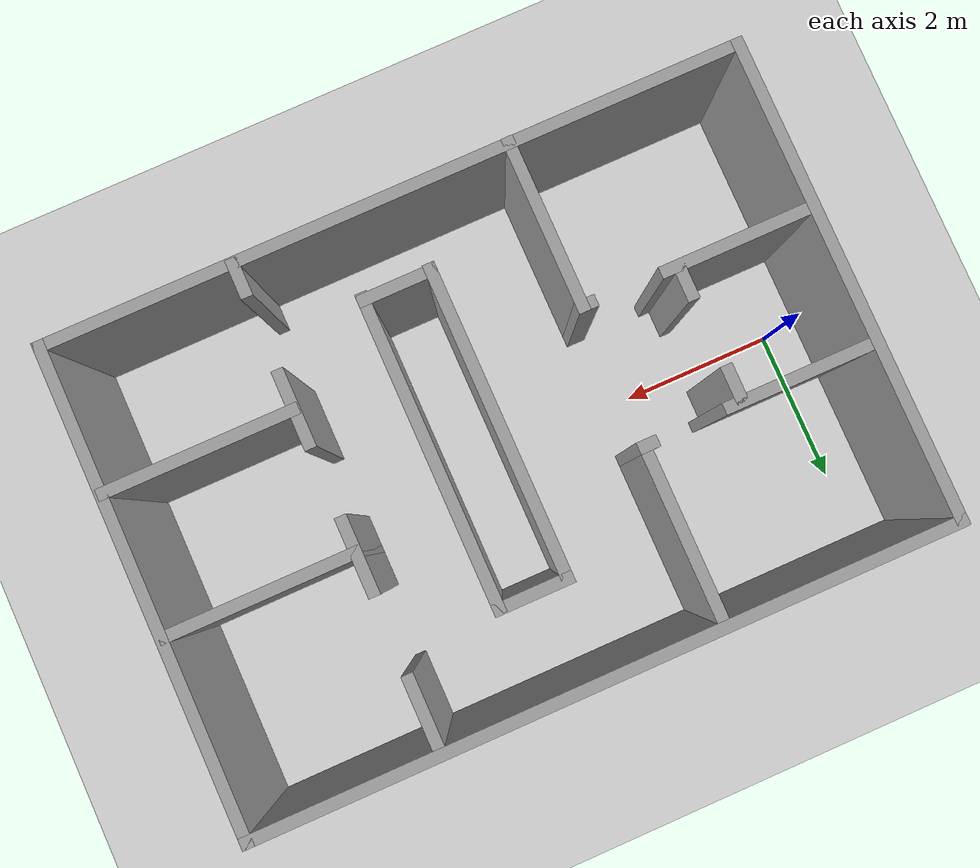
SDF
<sdf version="1.7">
 <world name="default">
  <light name="sun" type="directional">
   <pose>0 0 10 0 -0 0</pose>
   <diffuse>0.8 0.8 0.8 1</diffuse>
   <specular>0.2 0.2 0.2 1</specular>
   <attenuation>
    <range>1000</range>
    <constant>0.9</constant>
    <linear>0.01</linear>
    <quadratic>0.001</quadratic>
   </attenuation>
   <direction>-0.5 0.1 -0.9</direction>
   <spot><inner_angle>0</inner_angle><outer_angle>0</outer_angle><falloff>0</falloff></spot>
  </light>
  <model name="ground_plane">
   <static>1</static>
   <link name="link">
    <collision name="collision">
     <geometry><plane><normal>0 0 1</normal><size>100 100</size></plane></geometry>
     <surface>
      <contact><collide_bitmask>65535</collide_bitmask></contact>
      <friction><ode><mu>100</mu><mu2>50</mu2></ode></friction>
     </surface>
    </collision>
    <visual name="visual">
     <cast_shadows>0</cast_shadows>
     <geometry><plane><normal>0 0 1</normal><size>100 100</size></plane></geometry>
     <material>
      <script><uri>file://media/materials/scripts/gazebo.material</uri><name>Gazebo/Grey</name></script>
     </material>
    </visual>
   </link>
  </model>
  <gravity>0 0 -9.8</gravity>
  <magnetic_field>6e-06 2.3e-05 -4.2e-05</magnetic_field>
  <atmosphere type="adiabatic"/>
  <physics type="ode">
   <max_step_size>0.003</max_step_size>
   <real_time_factor>1</real_time_factor>
   <real_time_update_rate>1000</real_time_update_rate>
  </physics>
  <scene><ambient>0.4 0.4 0.4 1</ambient><background>0.7 0.7 0.7 1</background><shadows>1</shadows></scene>
  <spherical_coordinates>
   <surface_model>EARTH_WGS84</surface_model>
   <latitude_deg>0</latitude_deg>
   <longitude_deg>0</longitude_deg>
   <elevation>0</elevation>
   <heading_deg>0</heading_deg>
  </spherical_coordinates>
  <model name="Untitledñlkñlklñ">
   <pose>3.88389 -0.104499 0 0 -0 0</pose>
   <link name="Wall_0">
    <collision name="Wall_0_Collision">
     <geometry><box><size>9 0.15 2.5</size></box></geometry>
     <pose>0 0 1.25 0 -0 0</pose>
    </collision>
    <visual name="Wall_0_Visual">
     <pose>0 0 1.25 0 -0 0</pose>
     <geometry><box><size>9 0.15 2.5</size></box></geometry>
     <material>
      <script><uri>file://media/materials/scripts/gazebo.material</uri><name>Gazebo/Grey</name></script>
      <ambient>1 1 1 1</ambient>
     </material>
     <meta><layer>0</layer></meta>
    </visual>
    <pose>0 3.05202 0 0 -0 0</pose>
   </link>
   <link name="Wall_1">
    <collision name="Wall_1_Collision">
     <geometry><box><size>6.25 0.15 2.5</size></box></geometry>
     <pose>0 0 1.25 0 -0 0</pose>
    </collision>
    <visual name="Wall_1_Visual">
     <pose>0 0 1.25 0 -0 0</pose>
     <geometry><box><size>6.25 0.15 2.5</size></box></geometry>
     <material>
      <script><uri>file://media/materials/scripts/gazebo.material</uri><name>Gazebo/Grey</name></script>
      <ambient>1 1 1 1</ambient>
     </material>
     <meta><layer>0</layer></meta>
    </visual>
    <pose>4.425 0.002016 0 0 -0 -1.5708</pose>
   </link>
   <link name="Wall_13">
    <collision name="Wall_13_Collision">
     <geometry><box><size>1 0.15 2.5</size></box></geometry>
     <pose>0 0 1.25 0 -0 0</pose>
    </collision>
    <visual name="Wall_13_Visual">
     <pose>0 0 1.25 0 -0 0</pose>
     <geometry><box><size>1 0.15 2.5</size></box></geometry>
     <material>
      <script><uri>file://media/materials/scripts/gazebo.material</uri><name>Gazebo/Grey</name></script>
      <ambient>1 1 1 1</ambient>
     </material>
     <meta><layer>0</layer></meta>
    </visual>
    <pose>2.02883 0.633149 0 0 -0 -1.5708</pose>
   </link>
   <link name="Wall_16">
    <collision name="Wall_16_Collision">
     <geometry><box><size>2.5 0.15 2.5</size></box></geometry>
     <pose>0 0 1.25 0 -0 0</pose>
    </collision>
    <visual name="Wall_16_Visual">
     <pose>0 0 1.25 0 -0 0</pose>
     <geometry><box><size>2.5 0.15 2.5</size></box></geometry>
     <material>
      <script><uri>file://media/materials/scripts/gazebo.material</uri><name>Gazebo/Grey</name></script>
      <ambient>1 1 1 1</ambient>
     </material>
     <meta><layer>0</layer></meta>
    </visual>
    <pose>3.20383 0.585917 0 0 -0 0</pose>
   </link>
   <link name="Wall_18">
    <collision name="Wall_18_Collision">
     <geometry><box><size>1 0.15 2.5</size></box></geometry>
     <pose>0 0 1.25 0 -0 0</pose>
    </collision>
    <visual name="Wall_18_Visual">
     <pose>0 0 1.25 0 -0 0</pose>
     <geometry><box><size>1 0.15 2.5</size></box></geometry>
     <material>
      <script><uri>file://media/materials/scripts/gazebo.material</uri><name>Gazebo/Grey</name></script>
      <ambient>1 1 1 1</ambient>
     </material>
     <meta><layer>0</layer></meta>
    </visual>
    <pose>2.02883 -1.20331 0 0 -0 -1.5708</pose>
   </link>
   <link name="Wall_2">
    <collision name="Wall_2_Collision">
     <geometry><box><size>9 0.15 2.5</size></box></geometry>
     <pose>0 0 1.25 0 -0 0</pose>
    </collision>
    <visual name="Wall_2_Visual">
     <pose>0 0 1.25 0 -0 0</pose>
     <geometry><box><size>9 0.15 2.5</size></box></geometry>
     <material>
      <script><uri>file://media/materials/scripts/gazebo.material</uri><name>Gazebo/Grey</name></script>
      <ambient>1 1 1 1</ambient>
     </material>
     <meta><layer>0</layer></meta>
    </visual>
    <pose>0 -3.04798 0 0 -0 3.14159</pose>
   </link>
   <link name="Wall_20">
    <collision name="Wall_20_Collision">
     <geometry><box><size>2.5 0.15 2.5</size></box></geometry>
     <pose>0 0 1.25 0 -0 0</pose>
    </collision>
    <visual name="Wall_20_Visual">
     <pose>0 0 1.25 0 -0 0</pose>
     <geometry><box><size>2.5 0.15 2.5</size></box></geometry>
     <material>
      <script><uri>file://media/materials/scripts/gazebo.material</uri><name>Gazebo/Grey</name></script>
      <ambient>1 1 1 1</ambient>
     </material>
     <meta><layer>0</layer></meta>
    </visual>
    <pose>3.22132 -1.19807 0 0 -0 0</pose>
   </link>
   <link name="Wall_22">
    <collision name="Wall_22_Collision">
     <geometry><box><size>0.5 0.15 2.5</size></box></geometry>
     <pose>0 0 1.25 0 -0 0</pose>
    </collision>
    <visual name="Wall_22_Visual">
     <pose>0 0 1.25 0 -0 0</pose>
     <geometry><box><size>0.5 0.15 2.5</size></box></geometry>
     <material>
      <script><uri>file://media/materials/scripts/gazebo.material</uri><name>Gazebo/Grey</name></script>
      <ambient>1 1 1 1</ambient>
     </material>
     <meta><layer>0</layer></meta>
    </visual>
    <pose>2.01134 -2.85953 0 0 -0 1.5708</pose>
   </link>
   <link name="Wall_25">
    <collision name="Wall_25_Collision">
     <geometry><box><size>2 0.15 2.5</size></box></geometry>
     <pose>0 0 1.25 0 -0 0</pose>
    </collision>
    <visual name="Wall_25_Visual">
     <pose>0 0 1.25 0 -0 0</pose>
     <geometry><box><size>2 0.15 2.5</size></box></geometry>
     <material>
      <script><uri>file://media/materials/scripts/gazebo.material</uri><name>Gazebo/Grey</name></script>
      <ambient>1 1 1 1</ambient>
     </material>
     <meta><layer>0</layer></meta>
    </visual>
    <pose>-3.48251 0.795798 0 0 -0 0</pose>
   </link>
   <link name="Wall_27">
    <collision name="Wall_27_Collision">
     <geometry><box><size>2 0.15 2.5</size></box></geometry>
     <pose>0 0 1.25 0 -0 0</pose>
    </collision>
    <visual name="Wall_27_Visual">
     <pose>0 0 1.25 0 -0 0</pose>
     <geometry><box><size>2 0.15 2.5</size></box></geometry>
     <material>
      <script><uri>file://media/materials/scripts/gazebo.material</uri><name>Gazebo/Grey</name></script>
      <ambient>1 1 1 1</ambient>
     </material>
     <meta><layer>0</layer></meta>
    </visual>
    <pose>-3.46502 -0.935718 0 0 -0 0</pose>
   </link>
   <link name="Wall_3">
    <collision name="Wall_3_Collision">
     <geometry><box><size>6.25 0.15 2.5</size></box></geometry>
     <pose>0 0 1.25 0 -0 0</pose>
    </collision>
    <visual name="Wall_3_Visual">
     <pose>0 0 1.25 0 -0 0</pose>
     <geometry><box><size>6.25 0.15 2.5</size></box></geometry>
     <material>
      <script><uri>file://media/materials/scripts/gazebo.material</uri><name>Gazebo/Grey</name></script>
      <ambient>1 1 1 1</ambient>
     </material>
     <meta><layer>0</layer></meta>
    </visual>
    <pose>-4.425 0.002016 0 0 -0 1.5708</pose>
   </link>
   <link name="Wall_30">
    <collision name="Wall_30_Collision">
     <geometry><box><size>0.25 0.15 2.5</size></box></geometry>
     <pose>0 0 1.25 0 -0 0</pose>
    </collision>
    <visual name="Wall_30_Visual">
     <pose>0 0 1.25 0 -0 0</pose>
     <geometry><box><size>0.25 0.15 2.5</size></box></geometry>
     <material>
      <script><uri>file://media/materials/scripts/gazebo.material</uri><name>Gazebo/Grey</name></script>
      <ambient>1 1 1 1</ambient>
     </material>
     <meta><layer>0</layer></meta>
    </visual>
    <pose>-1.51918 0.812095 0 0 -0 3.14159</pose>
   </link>
   <link name="Wall_32">
    <collision name="Wall_32_Collision">
     <geometry><box><size>0.25 0.15 2.5</size></box></geometry>
     <pose>0 0 1.25 0 -0 0</pose>
    </collision>
    <visual name="Wall_32_Visual">
     <pose>0 0 1.25 0 -0 0</pose>
     <geometry><box><size>0.25 0.15 2.5</size></box></geometry>
     <material>
      <script><uri>file://media/materials/scripts/gazebo.material</uri><name>Gazebo/Grey</name></script>
      <ambient>1 1 1 1</ambient>
     </material>
     <meta><layer>0</layer></meta>
    </visual>
    <pose>-1.53667 -0.952016 0 0 -0 3.14159</pose>
   </link>
   <link name="Wall_35">
    <collision name="Wall_35_Collision">
     <geometry><box><size>0.5 0.15 2.5</size></box></geometry>
     <pose>0 0 1.25 0 -0 0</pose>
    </collision>
    <visual name="Wall_35_Visual">
     <pose>0 0 1.25 0 -0 0</pose>
     <geometry><box><size>0.5 0.15 2.5</size></box></geometry>
     <material>
      <script><uri>file://media/materials/scripts/gazebo.material</uri><name>Gazebo/Grey</name></script>
      <ambient>1 1 1 1</ambient>
     </material>
     <meta><layer>0</layer></meta>
    </visual>
    <pose>-2.69348 -0.743228 0 0 -0 1.5708</pose>
   </link>
   <link name="Wall_39">
    <collision name="Wall_39_Collision">
     <geometry><box><size>0.5 0.15 2.5</size></box></geometry>
     <pose>0 0 1.25 0 -0 0</pose>
    </collision>
    <visual name="Wall_39_Visual">
     <pose>0 0 1.25 0 -0 0</pose>
     <geometry><box><size>0.5 0.15 2.5</size></box></geometry>
     <material>
      <script><uri>file://media/materials/scripts/gazebo.material</uri><name>Gazebo/Grey</name></script>
      <ambient>1 1 1 1</ambient>
     </material>
     <meta><layer>0</layer></meta>
    </visual>
    <pose>-2.71097 0.585818 0 0 -0 -1.5708</pose>
   </link>
   <link name="Wall_46">
    <collision name="Wall_46_Collision">
     <geometry><box><size>1 0.15 2.5</size></box></geometry>
     <pose>0 0 1.25 0 -0 0</pose>
    </collision>
    <visual name="Wall_46_Visual">
     <pose>0 0 1.25 0 -0 0</pose>
     <geometry><box><size>1 0.15 2.5</size></box></geometry>
     <material>
      <script><uri>file://media/materials/scripts/gazebo.material</uri><name>Gazebo/Grey</name></script>
      <ambient>1 1 1 1</ambient>
     </material>
     <meta><layer>0</layer></meta>
    </visual>
    <pose>0.372516 1.82771 0 0 -0 0</pose>
   </link>
   <link name="Wall_47">
    <collision name="Wall_47_Collision">
     <geometry><box><size>4.01749 0.15 2.5</size></box></geometry>
     <pose>0 0 1.25 0 -0 0</pose>
    </collision>
    <visual name="Wall_47_Visual">
     <pose>0 0 1.25 0 -0 0</pose>
     <geometry><box><size>4.01749 0.15 2.5</size></box></geometry>
     <material>
      <script><uri>file://media/materials/scripts/gazebo.material</uri><name>Gazebo/Grey</name></script>
      <ambient>1 1 1 1</ambient>
     </material>
     <meta><layer>0</layer></meta>
    </visual>
    <pose>0.797516 -0.123524 0 0 -0 -1.5708</pose>
   </link>
   <link name="Wall_49">
    <collision name="Wall_49_Collision">
     <geometry><box><size>4.01749 0.15 2.5</size></box></geometry>
     <pose>0 0 1.25 0 -0 0</pose>
    </collision>
    <visual name="Wall_49_Visual">
     <pose>0 0 1.25 0 -0 0</pose>
     <geometry><box><size>4.01749 0.15 2.5</size></box></geometry>
     <material>
      <script><uri>file://media/materials/scripts/gazebo.material</uri><name>Gazebo/Grey</name></script>
      <ambient>1 1 1 1</ambient>
     </material>
     <meta><layer>0</layer></meta>
    </visual>
    <pose>-0.052484 -0.123524 0 0 -0 -1.5708</pose>
   </link>
   <link name="Wall_5">
    <collision name="Wall_5_Collision">
     <geometry><box><size>2.31996 0.15 2.5</size></box></geometry>
     <pose>0 0 1.25 0 -0 0</pose>
    </collision>
    <visual name="Wall_5_Visual">
     <pose>0 0 1.25 0 -0 0</pose>
     <geometry><box><size>2.31996 0.15 2.5</size></box></geometry>
     <material>
      <script><uri>file://media/materials/scripts/gazebo.material</uri><name>Gazebo/Grey</name></script>
      <ambient>1 1 1 1</ambient>
     </material>
     <meta><layer>0</layer></meta>
    </visual>
    <pose>-1.46918 1.89708 0 0 -0 -1.5708</pose>
   </link>
   <link name="Wall_50">
    <collision name="Wall_50_Collision">
     <geometry><box><size>1 0.15 2.5</size></box></geometry>
     <pose>0 0 1.25 0 -0 0</pose>
    </collision>
    <visual name="Wall_50_Visual">
     <pose>0 0 1.25 0 -0 0</pose>
     <geometry><box><size>1 0.15 2.5</size></box></geometry>
     <material>
      <script><uri>file://media/materials/scripts/gazebo.material</uri><name>Gazebo/Grey</name></script>
      <ambient>1 1 1 1</ambient>
     </material>
     <meta><layer>0</layer></meta>
    </visual>
    <pose>0.372516 -2.03978 0 0 -0 0</pose>
   </link>
   <link name="Wall_7">
    <collision name="Wall_7_Collision">
     <geometry><box><size>2.25 0.15 2.5</size></box></geometry>
     <pose>0 0 1.25 0 -0 0</pose>
    </collision>
    <visual name="Wall_7_Visual">
     <pose>0 0 1.25 0 -0 0</pose>
     <geometry><box><size>2.25 0.15 2.5</size></box></geometry>
     <material>
      <script><uri>file://media/materials/scripts/gazebo.material</uri><name>Gazebo/Grey</name></script>
      <ambient>1 1 1 1</ambient>
     </material>
     <meta><layer>0</layer></meta>
    </visual>
    <pose>-1.48667 -2.00202 0 0 -0 1.5708</pose>
   </link>
   <link name="Wall_9">
    <collision name="Wall_9_Collision">
     <geometry><box><size>1 0.15 2.5</size></box></geometry>
     <pose>0 0 1.25 0 -0 0</pose>
    </collision>
    <visual name="Wall_9_Visual">
     <pose>0 0 1.25 0 -0 0</pose>
     <geometry><box><size>1 0.15 2.5</size></box></geometry>
     <material>
      <script><uri>file://media/materials/scripts/gazebo.material</uri><name>Gazebo/Grey</name></script>
      <ambient>1 1 1 1</ambient>
     </material>
     <meta><layer>0</layer></meta>
    </visual>
    <pose>2.04632 2.57455 0 0 -0 -1.5708</pose>
   </link>
   <static>1</static>
  </model>
 </world>
</sdf>
